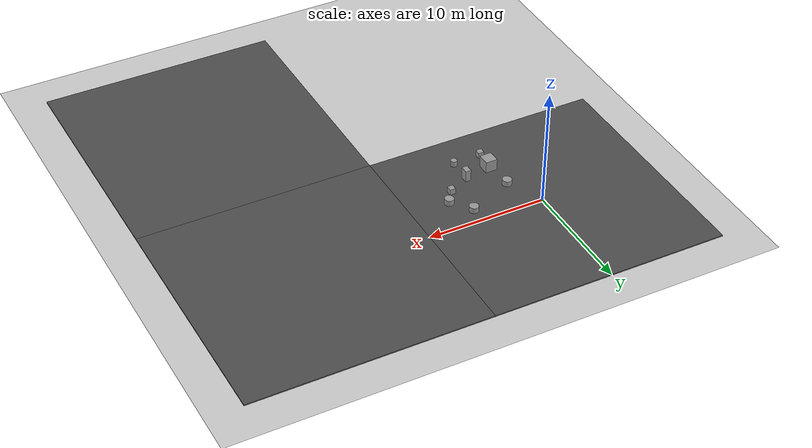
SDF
<sdf version="1.7">
 <world name="default">
  <model name="ground_plane">
   <static>1</static>
   <link name="link">
    <collision name="collision">
     <geometry><plane><normal>0 0 1</normal><size>100 100</size></plane></geometry>
     <surface>
      <contact><collide_bitmask>65535</collide_bitmask></contact>
      <friction><ode><mu>100</mu><mu2>50</mu2></ode></friction>
     </surface>
    </collision>
    <visual name="visual">
     <cast_shadows>0</cast_shadows>
     <geometry><plane><normal>0 0 1</normal><size>100 100</size></plane></geometry>
     <material>
      <script><uri>file://media/materials/scripts/gazebo.material</uri><name>Gazebo/Grey</name></script>
     </material>
    </visual>
   </link>
  </model>
  <model name="asphalt_plane">
   <static>1</static>
   <link name="link">
    <collision name="collision"><geometry><box><size>20 20 0.1</size></box></geometry></collision>
    <visual name="visual">
     <cast_shadows>0</cast_shadows>
     <geometry><box><size>20 20 0.1</size></box></geometry>
     <material>
      <script>
       <uri>model://asphalt_plane/materials/scripts</uri>
       <uri>model://asphalt_plane/materials/textures</uri>
       <name>vrc/asphalt</name>
      </script>
     </material>
    </visual>
   </link>
  </model>
  <model name="asphalt_plane_clone">
   <static>1</static>
   <link name="link">
    <collision name="collision"><geometry><box><size>20 20 0.1</size></box></geometry></collision>
    <visual name="visual">
     <cast_shadows>0</cast_shadows>
     <geometry><box><size>20 20 0.1</size></box></geometry>
     <material>
      <script>
       <uri>model://asphalt_plane/materials/scripts</uri>
       <uri>model://asphalt_plane/materials/textures</uri>
       <name>vrc/asphalt</name>
      </script>
     </material>
    </visual>
   </link>
   <pose>20 0 0 0 -0 0</pose>
  </model>
  <model name="asphalt_plane_clone_0">
   <static>1</static>
   <link name="link">
    <collision name="collision"><geometry><box><size>20 20 0.1</size></box></geometry></collision>
    <visual name="visual">
     <cast_shadows>0</cast_shadows>
     <geometry><box><size>20 20 0.1</size></box></geometry>
     <material>
      <script>
       <uri>model://asphalt_plane/materials/scripts</uri>
       <uri>model://asphalt_plane/materials/textures</uri>
       <name>vrc/asphalt</name>
      </script>
     </material>
    </visual>
   </link>
   <pose>20 -20 0 0 -0 0</pose>
  </model>
  <model name="unit_cylinder_clone_15">
   <pose>4 -7 0.294825 0 -0 0.00028</pose>
   <link name="link">
    <inertial>
     <mass>1</mass>
     <inertia><ixx>0.145833</ixx><ixy>0</ixy><ixz>0</ixz><iyy>0.145833</iyy><iyz>0</iyz><izz>0.125</izz></inertia>
    </inertial>
    <collision name="collision">
     <geometry><cylinder><radius>0.264047</radius><length>0.48967</length></cylinder></geometry>
    </collision>
    <visual name="visual">
     <geometry><cylinder><radius>0.264047</radius><length>0.48967</length></cylinder></geometry>
     <material>
      <script><name>Gazebo/Grey</name><uri>file://media/materials/scripts/gazebo.material</uri></script>
     </material>
    </visual>
   </link>
  </model>
  <model name="unit_box_0_clone_1_clone_1">
   <pose>1.57378 -7.08205 0.301356 0 -0 1e-06</pose>
   <link name="link">
    <inertial>
     <mass>1</mass>
     <inertia>
      <ixx>0.166667</ixx>
      <ixy>0</ixy>
      <ixz>0</ixz>
      <iyy>0.166667</iyy>
      <iyz>0</iyz>
      <izz>0.166667</izz>
     </inertia>
    </inertial>
    <collision name="collision">
     <geometry><box><size>0.495294 0.467832 0.502712</size></box></geometry>
    </collision>
    <visual name="visual">
     <geometry><box><size>0.495294 0.467832 0.502712</size></box></geometry>
     <material>
      <script><name>Gazebo/Grey</name><uri>file://media/materials/scripts/gazebo.material</uri></script>
     </material>
    </visual>
   </link>
  </model>
  <model name="unit_box_0_clone_1_clone_2">
   <pose>5.89538 -3.99875 0.301356 0 -0 1e-06</pose>
   <link name="link">
    <inertial>
     <mass>1</mass>
     <inertia>
      <ixx>0.166667</ixx>
      <ixy>0</ixy>
      <ixz>0</ixz>
      <iyy>0.166667</iyy>
      <iyz>0</iyz>
      <izz>0.166667</izz>
     </inertia>
    </inertial>
    <collision name="collision">
     <geometry><box><size>0.495294 0.467832 0.502712</size></box></geometry>
    </collision>
    <visual name="visual">
     <geometry><box><size>0.495294 0.467832 0.502712</size></box></geometry>
     <material>
      <script><name>Gazebo/Grey</name><uri>file://media/materials/scripts/gazebo.material</uri></script>
     </material>
    </visual>
   </link>
  </model>
  <model name="unit_box_1">
   <pose>1.73473 -5.44839 0.549996 9e-06 1e-06 0</pose>
   <link name="link">
    <inertial>
     <mass>1</mass>
     <inertia>
      <ixx>0.166667</ixx>
      <ixy>0</ixy>
      <ixz>0</ixz>
      <iyy>0.166667</iyy>
      <iyz>0</iyz>
      <izz>0.166667</izz>
     </inertia>
    </inertial>
    <collision name="collision"><geometry><box><size>1 1 1</size></box></geometry></collision>
    <visual name="visual">
     <geometry><box><size>1 1 1</size></box></geometry>
     <material>
      <script><name>Gazebo/Grey</name><uri>file://media/materials/scripts/gazebo.material</uri></script>
     </material>
    </visual>
   </link>
  </model>
  <model name="unit_box_3_clone_3">
   <pose>4 -5 0.55 0 -0 0</pose>
   <link name="link">
    <inertial>
     <mass>1</mass>
     <inertia>
      <ixx>0.166667</ixx>
      <ixy>0</ixy>
      <ixz>0</ixz>
      <iyy>0.166667</iyy>
      <iyz>0</iyz>
      <izz>0.166667</izz>
     </inertia>
    </inertial>
    <collision name="collision"><geometry><box><size>0.473217 0.637104 1</size></box></geometry></collision>
    <visual name="visual">
     <geometry><box><size>0.473217 0.637104 1</size></box></geometry>
     <material>
      <script><name>Gazebo/Grey</name><uri>file://media/materials/scripts/gazebo.material</uri></script>
     </material>
    </visual>
   </link>
  </model>
  <model name="unit_cylinder_clone_4_clone">
   <pose>5.41677 -1.25303 0.294827 -5e-06 -1e-06 6e-06</pose>
   <link name="link">
    <inertial>
     <mass>1</mass>
     <inertia><ixx>0.145833</ixx><ixy>0</ixy><ixz>0</ixz><iyy>0.145833</iyy><iyz>0</iyz><izz>0.125</izz></inertia>
    </inertial>
    <collision name="collision">
     <geometry><cylinder><radius>0.384097</radius><length>0.48967</length></cylinder></geometry>
    </collision>
    <visual name="visual">
     <geometry><cylinder><radius>0.384097</radius><length>0.48967</length></cylinder></geometry>
     <material>
      <script><name>Gazebo/Grey</name><uri>file://media/materials/scripts/gazebo.material</uri></script>
     </material>
    </visual>
   </link>
  </model>
  <model name="unit_cylinder_clone_4_clone_1">
   <pose>6.6818 -2.92346 0.294835 -0 -0 -4.6e-05</pose>
   <link name="link">
    <inertial>
     <mass>1</mass>
     <inertia><ixx>0.145833</ixx><ixy>0</ixy><ixz>0</ixz><iyy>0.145833</iyy><iyz>0</iyz><izz>0.125</izz></inertia>
    </inertial>
    <collision name="collision">
     <geometry><cylinder><radius>0.384097</radius><length>0.48967</length></cylinder></geometry>
    </collision>
    <visual name="visual">
     <geometry><cylinder><radius>0.384097</radius><length>0.48967</length></cylinder></geometry>
     <material>
      <script><name>Gazebo/Grey</name><uri>file://media/materials/scripts/gazebo.material</uri></script>
     </material>
    </visual>
   </link>
  </model>
  <model name="unit_cylinder_clone_4_clone_clone_1">
   <pose>1.45769 -2.9697 0.294837 4e-06 -0 2.9e-05</pose>
   <link name="link">
    <inertial>
     <mass>1</mass>
     <inertia><ixx>0.145833</ixx><ixy>0</ixy><ixz>0</ixz><iyy>0.145833</iyy><iyz>0</iyz><izz>0.125</izz></inertia>
    </inertial>
    <collision name="collision">
     <geometry><cylinder><radius>0.384097</radius><length>0.48967</length></cylinder></geometry>
    </collision>
    <visual name="visual">
     <geometry><cylinder><radius>0.384097</radius><length>0.48967</length></cylinder></geometry>
     <material>
      <script><name>Gazebo/Grey</name><uri>file://media/materials/scripts/gazebo.material</uri></script>
     </material>
    </visual>
   </link>
  </model>
 </world>
</sdf>
